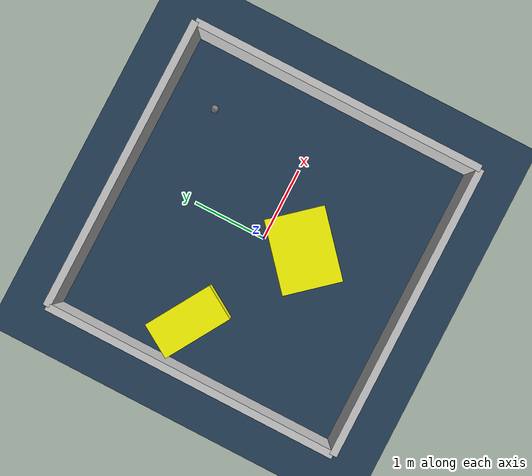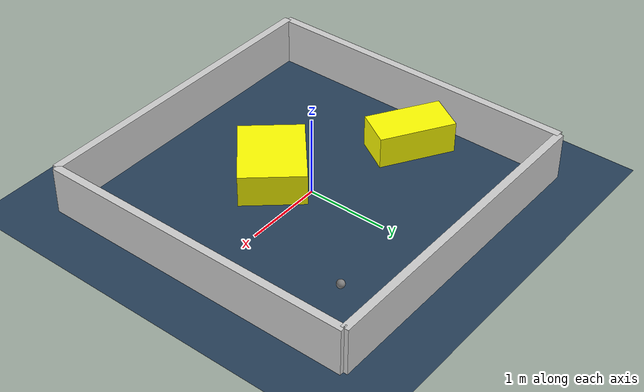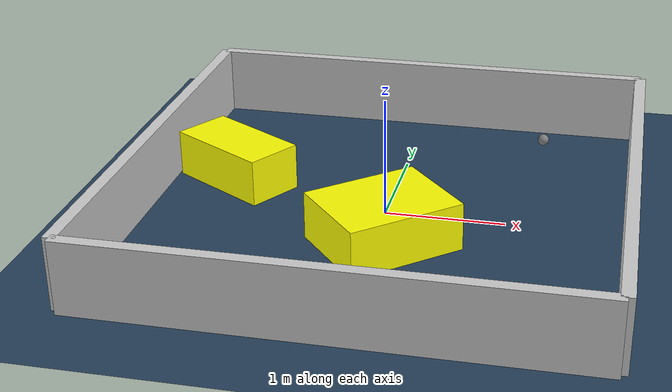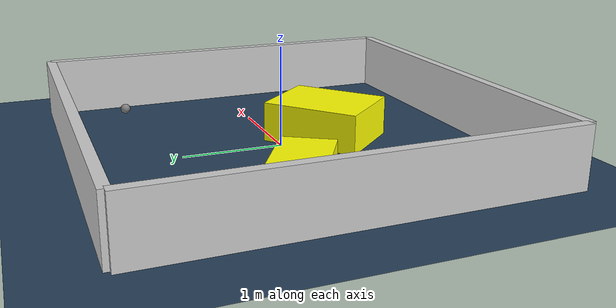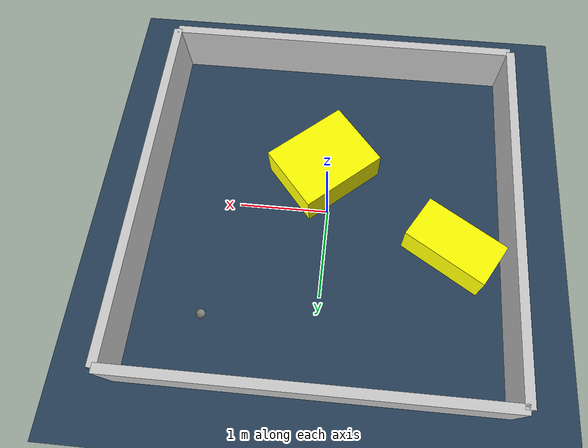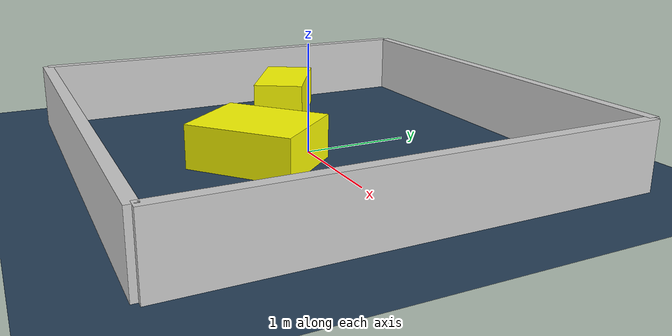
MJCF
<?xml version="1.0" ?>
<mujoco model="generated_environment">
  <option timestep="0.01" integrator="RK4" cone="elliptic"/>
  <default>
    <geom density="1"/>
  </default>
  <asset>
    <texture builtin="gradient" height="3072" rgb1="0.3 0.5 0.7" rgb2="0 0 0" type="skybox" width="512"/>
    <texture builtin="checker" height="300" mark="edge" markrgb="0.8 0.8 0.8" name="groundplane" rgb1="0.2 0.3 0.4" rgb2="0.1 0.2 0.3" type="2d" width="300"/>
    <material name="groundplane" reflectance="0.2" texrepeat="5 5" texture="groundplane" texuniform="true"/>
    <material name="robot" rgba="0.0 1.0 0.0 1"/>
  </asset>
  <worldbody>
    <light dir="0 0 -1" directional="true" pos="0 0 1.5"/>
    <geom condim="4" friction="1.0 0.005 0.001" material="groundplane" name="floor" size="0 0 0.05" type="plane"/>
    <body name="walls">
      <geom name="wall_1" condim="4" pos="-2.0 0.0 0.3" rgba="0.800000011920929 0.800000011920929 0.800000011920929 1.0" size="0.05 2.0 0.3" type="box"/>
      <geom name="wall_2" condim="4" pos="2.0 0.0 0.3" rgba="0.800000011920929 0.800000011920929 0.800000011920929 1.0" size="0.05 2.0 0.3" type="box"/>
      <geom name="wall_3" condim="4" pos="0.0 -2.0 0.3" rgba="0.800000011920929 0.800000011920929 0.800000011920929 1.0" size="2.0 0.05 0.3" type="box"/>
      <geom name="wall_4" condim="4" pos="0.0 2.0 0.3" rgba="0.800000011920929 0.800000011920929 0.800000011920929 1.0" size="2.0 0.05 0.3" type="box"/>
    </body>
    <body name="robot">
      <joint name="joint_x" type="slide" pos="0 0 0" axis="1 0 0"/>
      <joint name="joint_y" type="slide" pos="0 0 0" axis="0 1 0"/>
      <geom name="robot" type="sphere" pos="1.1850680997795222 1.33216823125793 0.2" size="0.05" mass="5." friction="1.0 0.005 0.0001" condim="4"/>
      <site name="sensor_ball"/>
    </body>
    <body name="obstacle_1_movable">
      <geom name="obstacle_1_movable" condim="4" pos="0.08597299666696712 -0.520963631393444 0.2" euler="0 0 130.96409391809763" friction="1.0 0.005 0.001" rgba="1 1 0 1" size="0.3959363919278427 0.4969188622450492 0.2" type="box" mass="0.1"/>
      <joint type="free"/>
    </body>
    <body name="obstacle_2_movable">
      <geom name="obstacle_2_movable" condim="4" pos="-1.3912912082584092 0.36691122968545264 0.2" euler="0 0 148.69395532363924" friction="1.0 0.005 0.001" rgba="1 1 0 1" size="0.4779686726192952 0.24933359738056488 0.2" type="box" mass="0.1"/>
      <joint type="free"/>
    </body>
  </worldbody>
  <actuator>
    <motor name="actuator_x" joint="joint_x" gear="1" ctrlrange="-1 1"/>
    <motor name="actuator_y" joint="joint_y" gear="1" ctrlrange="-1 1"/>
  </actuator>
</mujoco>
